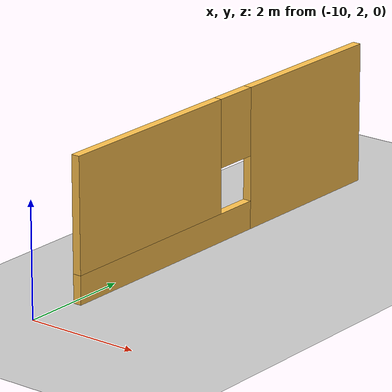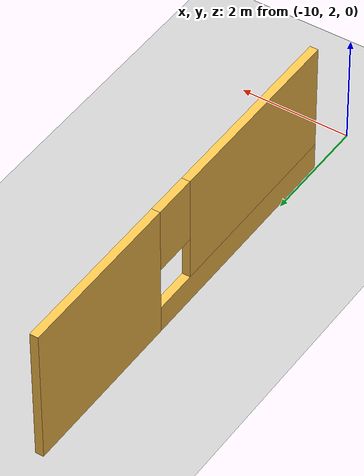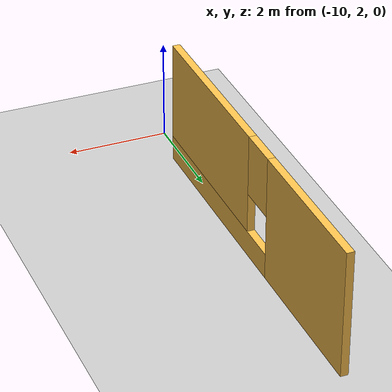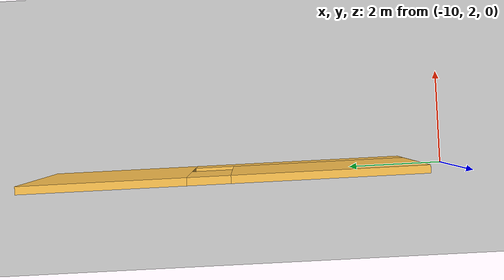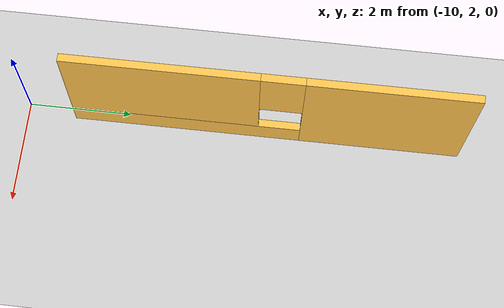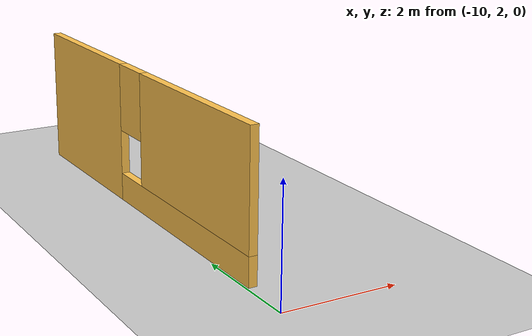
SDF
<sdf version="1.6">
 <world name="default">
  <model name="ground_plane">
   <static>1</static>
   <link name="link">
    <collision name="collision">
     <geometry><plane><normal>0 0 1</normal><size>100 100</size></plane></geometry>
     <surface><friction><ode><mu>100</mu><mu2>50</mu2></ode></friction></surface>
    </collision>
    <visual name="visual">
     <cast_shadows>0</cast_shadows>
     <geometry><plane><normal>0 0 1</normal><size>100 100</size></plane></geometry>
     <material>
      <script><uri>file://media/materials/scripts/gazebo.material</uri><name>Gazebo/Grey</name></script>
     </material>
    </visual>
   </link>
  </model>
  <model name="Building">
   <pose>-10.6691 -0.0294 0 0 -0 0</pose>
   <link name="Wall_199">
    <pose>0.774228 6.71473 0 0 0 -1.5694</pose>
    <visual name="Wall_199_Visual_0">
     <pose>-2.20052 0 1.25 0 -0 0</pose>
     <geometry><box><size>3.09897 0.15 2.5</size></box></geometry>
     <material>
      <script><uri>file://media/materials/scripts/gazebo.material</uri><name>Gazebo/Grey</name></script>
      <ambient>1 0.764706 0.305882 1</ambient>
     </material>
     <meta><layer>0</layer></meta>
    </visual>
    <collision name="Wall_199_Collision_0">
     <geometry><box><size>3.09897 0.15 2.5</size></box></geometry>
     <pose>-2.20052 0 1.25 0 -0 0</pose>
    </collision>
    <visual name="Wall_199_Visual_1">
     <pose>1.54948 0 0.25 0 -0 0</pose>
     <geometry><box><size>4.40104 0.15 0.5</size></box></geometry>
     <material>
      <script><uri>file://media/materials/scripts/gazebo.material</uri><name>Gazebo/Grey</name></script>
      <ambient>1 0.764706 0.305882 1</ambient>
     </material>
     <meta><layer>0</layer></meta>
    </visual>
    <collision name="Wall_199_Collision_1">
     <geometry><box><size>4.40104 0.15 0.5</size></box></geometry>
     <pose>1.54948 0 0.25 0 -0 0</pose>
    </collision>
    <visual name="Wall_199_Visual_2">
     <pose>1.94948 0 1.5 0 -0 0</pose>
     <geometry><box><size>3.60104 0.15 2</size></box></geometry>
     <material>
      <script><uri>file://media/materials/scripts/gazebo.material</uri><name>Gazebo/Grey</name></script>
      <ambient>1 0.764706 0.305882 1</ambient>
     </material>
     <meta><layer>0</layer></meta>
    </visual>
    <collision name="Wall_199_Collision_2">
     <geometry><box><size>3.60104 0.15 2</size></box></geometry>
     <pose>1.94948 0 1.5 0 -0 0</pose>
    </collision>
    <visual name="Wall_199_Visual_3">
     <pose>-0.251037 0 1.9 0 -0 0</pose>
     <geometry><box><size>0.8 0.15 1.2</size></box></geometry>
     <material>
      <script><uri>file://media/materials/scripts/gazebo.material</uri><name>Gazebo/Grey</name></script>
      <ambient>1 0.764706 0.305882 1</ambient>
     </material>
     <meta><layer>0</layer></meta>
    </visual>
    <collision name="Wall_199_Collision_3">
     <geometry><box><size>0.8 0.15 1.2</size></box></geometry>
     <pose>-0.251037 0 1.9 0 -0 0</pose>
    </collision>
   </link>
   <static>1</static>
  </model>
 </world>
</sdf>
